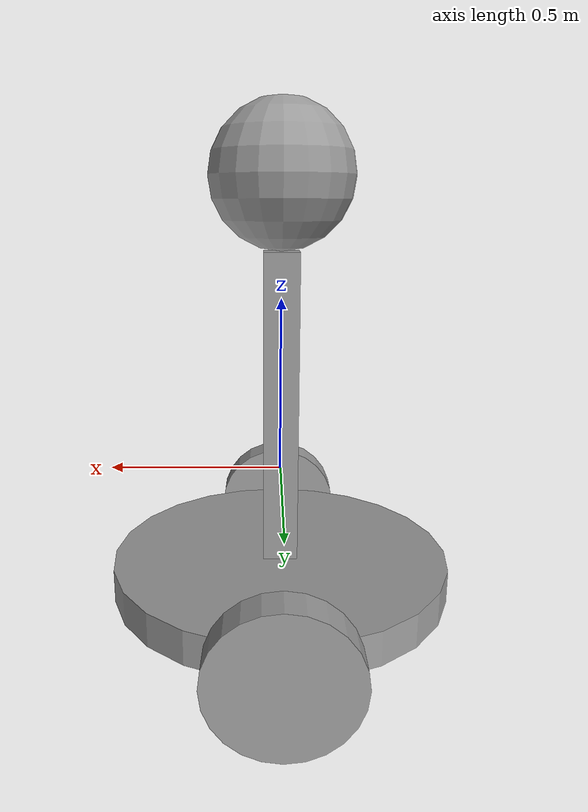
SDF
<?xml version='1.0'?>
<sdf version='1.6'>
  <model name='robot'>
    <link name='link_10'>
      <pose frame=''>0 0 0.83 0 -0 0</pose>
      <inertial>
        <mass>1</mass>
        <inertia>
          <ixx>0.1</ixx>
          <ixy>0</ixy>
          <ixz>0</ixz>
          <iyy>0.1</iyy>
          <iyz>0</iyz>
          <izz>0.1</izz>
        </inertia>
        <pose frame=''>0 0 0 0 -0 0</pose>
      </inertial>
      <gravity>1</gravity>
      <self_collide>0</self_collide>
      <kinematic>0</kinematic>
      <visual name='visual'>
        <pose frame=''>0 0 0 0 -0 0</pose>
        <geometry>
          <sphere>
            <radius>0.2</radius>
          </sphere>
        </geometry>
        <material>
          <lighting>1</lighting>
          <script>
            <uri>file://media/materials/scripts/gazebo.material</uri>
            <name>Gazebo/Grey</name>
          </script>
          <ambient>0.3 0.3 0.3 1</ambient>
          <diffuse>0.7 0.7 0.7 1</diffuse>
          <specular>0.01 0.01 0.01 1</specular>
          <emissive>0 0 0 1</emissive>
          <shader type='vertex'>
            <normal_map>__default__</normal_map>
          </shader>
        </material>
        <cast_shadows>1</cast_shadows>
        <transparency>0</transparency>
      </visual>
      <collision name='collision'>
        <laser_retro>0</laser_retro>
        <max_contacts>10</max_contacts>
        <pose frame=''>0 0 0 0 -0 0</pose>
        <geometry>
          <sphere>
            <radius>0.2</radius>
          </sphere>
        </geometry>
        <surface>
          <friction>
            <ode>
              <mu>1</mu>
              <mu2>1</mu2>
              <fdir1>0 0 0</fdir1>
              <slip1>0</slip1>
              <slip2>0</slip2>
            </ode>
            <torsional>
              <coefficient>1</coefficient>
              <patch_radius>0</patch_radius>
              <surface_radius>0</surface_radius>
              <use_patch_radius>1</use_patch_radius>
              <ode>
                <slip>0</slip>
              </ode>
            </torsional>
          </friction>
          <bounce>
            <restitution_coefficient>0</restitution_coefficient>
            <threshold>1e+06</threshold>
          </bounce>
          <contact>
            <collide_without_contact>0</collide_without_contact>
            <collide_without_contact_bitmask>1</collide_without_contact_bitmask>
            <collide_bitmask>1</collide_bitmask>
            <ode>
              <soft_cfm>0</soft_cfm>
              <soft_erp>0.2</soft_erp>
              <kp>1e+13</kp>
              <kd>1</kd>
              <max_vel>0.01</max_vel>
              <min_depth>0</min_depth>
            </ode>
            <bullet>
              <split_impulse>1</split_impulse>
              <split_impulse_penetration_threshold>-0.01</split_impulse_penetration_threshold>
              <soft_cfm>0</soft_cfm>
              <soft_erp>0.2</soft_erp>
              <kp>1e+13</kp>
              <kd>1</kd>
            </bullet>
          </contact>
        </surface>
      </collision>
    </link>
    <link name='link_6'>
      <pose frame=''>0 0 -0.32 0 -0 0</pose>
      <inertial>
        <mass>1</mass>
        <inertia>
          <ixx>0.145833</ixx>
          <ixy>0</ixy>
          <ixz>0</ixz>
          <iyy>0.145833</iyy>
          <iyz>0</iyz>
          <izz>0.125</izz>
        </inertia>
        <pose frame=''>0 0 0 0 -0 0</pose>
      </inertial>
      <gravity>1</gravity>
      <self_collide>0</self_collide>
      <kinematic>0</kinematic>
      <visual name='visual'>
        <pose frame=''>0 0 0 0 -0 0</pose>
        <geometry>
          <cylinder>
            <radius>0.5</radius>
            <length>0.1</length>
          </cylinder>
        </geometry>
        <material>
          <lighting>1</lighting>
          <script>
            <uri>file://media/materials/scripts/gazebo.material</uri>
            <name>Gazebo/Grey</name>
          </script>
          <ambient>0.3 0.3 0.3 1</ambient>
          <diffuse>0.7 0.7 0.7 1</diffuse>
          <specular>0.01 0.01 0.01 1</specular>
          <emissive>0 0 0 1</emissive>
          <shader type='vertex'>
            <normal_map>__default__</normal_map>
          </shader>
        </material>
        <cast_shadows>1</cast_shadows>
        <transparency>0</transparency>
      </visual>
      <collision name='collision'>
        <laser_retro>0</laser_retro>
        <max_contacts>10</max_contacts>
        <pose frame=''>0 0 0 0 -0 0</pose>
        <geometry>
          <cylinder>
            <radius>0.5</radius>
            <length>0.1</length>
          </cylinder>
        </geometry>
        <surface>
          <friction>
            <ode>
              <mu>1</mu>
              <mu2>1</mu2>
              <fdir1>0 0 0</fdir1>
              <slip1>0</slip1>
              <slip2>0</slip2>
            </ode>
            <torsional>
              <coefficient>1</coefficient>
              <patch_radius>0</patch_radius>
              <surface_radius>0</surface_radius>
              <use_patch_radius>1</use_patch_radius>
              <ode>
                <slip>0</slip>
              </ode>
            </torsional>
          </friction>
          <bounce>
            <restitution_coefficient>0</restitution_coefficient>
            <threshold>1e+06</threshold>
          </bounce>
          <contact>
            <collide_without_contact>0</collide_without_contact>
            <collide_without_contact_bitmask>1</collide_without_contact_bitmask>
            <collide_bitmask>1</collide_bitmask>
            <ode>
              <soft_cfm>0</soft_cfm>
              <soft_erp>0.2</soft_erp>
              <kp>1e+13</kp>
              <kd>1</kd>
              <max_vel>0.01</max_vel>
              <min_depth>0</min_depth>
            </ode>
            <bullet>
              <split_impulse>1</split_impulse>
              <split_impulse_penetration_threshold>-0.01</split_impulse_penetration_threshold>
              <soft_cfm>0</soft_cfm>
              <soft_erp>0.2</soft_erp>
              <kp>1e+13</kp>
              <kd>1</kd>
            </bullet>
          </contact>
        </surface>
      </collision>
    </link>
    <link name='link_7'>
      <pose frame=''>0 0 0.13 0 -0 0</pose>
      <inertial>
        <mass>1</mass>
        <inertia>
          <ixx>0.166667</ixx>
          <ixy>0</ixy>
          <ixz>0</ixz>
          <iyy>0.166667</iyy>
          <iyz>0</iyz>
          <izz>0.166667</izz>
        </inertia>
        <pose frame=''>0 0 0 0 -0 0</pose>
      </inertial>
      <gravity>1</gravity>
      <self_collide>0</self_collide>
      <kinematic>0</kinematic>
      <visual name='visual'>
        <pose frame=''>0 0 0 0 -0 0</pose>
        <geometry>
          <box>
            <size>0.1 0.1 1</size>
          </box>
        </geometry>
        <material>
          <lighting>1</lighting>
          <script>
            <uri>file://media/materials/scripts/gazebo.material</uri>
            <name>Gazebo/Grey</name>
          </script>
          <ambient>0.3 0.3 0.3 1</ambient>
          <diffuse>0.7 0.7 0.7 1</diffuse>
          <specular>0.01 0.01 0.01 1</specular>
          <emissive>0 0 0 1</emissive>
          <shader type='vertex'>
            <normal_map>__default__</normal_map>
          </shader>
        </material>
        <cast_shadows>1</cast_shadows>
        <transparency>0</transparency>
      </visual>
      <collision name='collision'>
        <laser_retro>0</laser_retro>
        <max_contacts>10</max_contacts>
        <pose frame=''>0 0 0 0 -0 0</pose>
        <geometry>
          <box>
            <size>0.1 0.1 1</size>
          </box>
        </geometry>
        <surface>
          <friction>
            <ode>
              <mu>1</mu>
              <mu2>1</mu2>
              <fdir1>0 0 0</fdir1>
              <slip1>0</slip1>
              <slip2>0</slip2>
            </ode>
            <torsional>
              <coefficient>1</coefficient>
              <patch_radius>0</patch_radius>
              <surface_radius>0</surface_radius>
              <use_patch_radius>1</use_patch_radius>
              <ode>
                <slip>0</slip>
              </ode>
            </torsional>
          </friction>
          <bounce>
            <restitution_coefficient>0</restitution_coefficient>
            <threshold>1e+06</threshold>
          </bounce>
          <contact>
            <collide_without_contact>0</collide_without_contact>
            <collide_without_contact_bitmask>1</collide_without_contact_bitmask>
            <collide_bitmask>1</collide_bitmask>
            <ode>
              <soft_cfm>0</soft_cfm>
              <soft_erp>0.2</soft_erp>
              <kp>1e+13</kp>
              <kd>1</kd>
              <max_vel>0.01</max_vel>
              <min_depth>0</min_depth>
            </ode>
            <bullet>
              <split_impulse>1</split_impulse>
              <split_impulse_penetration_threshold>-0.01</split_impulse_penetration_threshold>
              <soft_cfm>0</soft_cfm>
              <soft_erp>0.2</soft_erp>
              <kp>1e+13</kp>
              <kd>1</kd>
            </bullet>
          </contact>
        </surface>
      </collision>
    </link>
    <link name='link_8'>
      <pose frame=''>0 -0.550241 -0.32 1.572 -0 0</pose>
      <inertial>
        <mass>1</mass>
        <inertia>
          <ixx>0.145833</ixx>
          <ixy>0</ixy>
          <ixz>0</ixz>
          <iyy>0.145833</iyy>
          <iyz>0</iyz>
          <izz>0.125</izz>
        </inertia>
        <pose frame=''>0 0 0 0 -0 0</pose>
      </inertial>
      <gravity>1</gravity>
      <self_collide>0</self_collide>
      <kinematic>0</kinematic>
      <visual name='visual'>
        <pose frame=''>0 0 0 0 -0 0</pose>
        <geometry>
          <cylinder>
            <radius>0.2</radius>
            <length>0.1</length>
          </cylinder>
        </geometry>
        <material>
          <lighting>1</lighting>
          <script>
            <uri>file://media/materials/scripts/gazebo.material</uri>
            <name>Gazebo/Grey</name>
          </script>
          <ambient>0.3 0.3 0.3 1</ambient>
          <diffuse>0.7 0.7 0.7 1</diffuse>
          <specular>0.01 0.01 0.01 1</specular>
          <emissive>0 0 0 1</emissive>
          <shader type='vertex'>
            <normal_map>__default__</normal_map>
          </shader>
        </material>
        <cast_shadows>1</cast_shadows>
        <transparency>0</transparency>
      </visual>
      <collision name='collision'>
        <laser_retro>0</laser_retro>
        <max_contacts>10</max_contacts>
        <pose frame=''>0 0 0 0 -0 0</pose>
        <geometry>
          <cylinder>
            <radius>0.2</radius>
            <length>0.1</length>
          </cylinder>
        </geometry>
        <surface>
          <friction>
            <ode>
              <mu>1</mu>
              <mu2>1</mu2>
              <fdir1>0 0 0</fdir1>
              <slip1>0</slip1>
              <slip2>0</slip2>
            </ode>
            <torsional>
              <coefficient>1</coefficient>
              <patch_radius>0</patch_radius>
              <surface_radius>0</surface_radius>
              <use_patch_radius>1</use_patch_radius>
              <ode>
                <slip>0</slip>
              </ode>
            </torsional>
          </friction>
          <bounce>
            <restitution_coefficient>0</restitution_coefficient>
            <threshold>1e+06</threshold>
          </bounce>
          <contact>
            <collide_without_contact>0</collide_without_contact>
            <collide_without_contact_bitmask>1</collide_without_contact_bitmask>
            <collide_bitmask>1</collide_bitmask>
            <ode>
              <soft_cfm>0</soft_cfm>
              <soft_erp>0.2</soft_erp>
              <kp>1e+13</kp>
              <kd>1</kd>
              <max_vel>0.01</max_vel>
              <min_depth>0</min_depth>
            </ode>
            <bullet>
              <split_impulse>1</split_impulse>
              <split_impulse_penetration_threshold>-0.01</split_impulse_penetration_threshold>
              <soft_cfm>0</soft_cfm>
              <soft_erp>0.2</soft_erp>
              <kp>1e+13</kp>
              <kd>1</kd>
            </bullet>
          </contact>
        </surface>
      </collision>
    </link>
    <link name='link_8_clone'>
      <pose frame=''>0 0.550241 -0.32 1.572 -0 0</pose>
      <inertial>
        <mass>1</mass>
        <inertia>
          <ixx>0.145833</ixx>
          <ixy>0</ixy>
          <ixz>0</ixz>
          <iyy>0.145833</iyy>
          <iyz>0</iyz>
          <izz>0.125</izz>
        </inertia>
        <pose frame=''>0 0 0 0 -0 0</pose>
      </inertial>
      <self_collide>0</self_collide>
      <kinematic>0</kinematic>
      <visual name='visual'>
        <pose frame=''>0 0 0 0 -0 0</pose>
        <geometry>
          <cylinder>
            <radius>0.2</radius>
            <length>0.1</length>
          </cylinder>
        </geometry>
        <material>
          <lighting>1</lighting>
          <script>
            <uri>file://media/materials/scripts/gazebo.material</uri>
            <name>Gazebo/Grey</name>
          </script>
          <ambient>0.3 0.3 0.3 1</ambient>
          <diffuse>0.7 0.7 0.7 1</diffuse>
          <specular>0.01 0.01 0.01 1</specular>
          <emissive>0 0 0 1</emissive>
          <shader type='vertex'>
            <normal_map>__default__</normal_map>
          </shader>
        </material>
        <cast_shadows>1</cast_shadows>
        <transparency>0</transparency>
      </visual>
      <collision name='collision'>
        <laser_retro>0</laser_retro>
        <max_contacts>10</max_contacts>
        <pose frame=''>0 0 0 0 -0 0</pose>
        <geometry>
          <cylinder>
            <radius>0.2</radius>
            <length>0.1</length>
          </cylinder>
        </geometry>
        <surface>
          <friction>
            <ode>
              <mu>1</mu>
              <mu2>1</mu2>
              <fdir1>0 0 0</fdir1>
              <slip1>0</slip1>
              <slip2>0</slip2>
            </ode>
            <torsional>
              <coefficient>1</coefficient>
              <patch_radius>0</patch_radius>
              <surface_radius>0</surface_radius>
              <use_patch_radius>1</use_patch_radius>
              <ode>
                <slip>0</slip>
              </ode>
            </torsional>
          </friction>
          <bounce>
            <restitution_coefficient>0</restitution_coefficient>
            <threshold>1e+06</threshold>
          </bounce>
          <contact>
            <collide_without_contact>0</collide_without_contact>
            <collide_without_contact_bitmask>1</collide_without_contact_bitmask>
            <collide_bitmask>1</collide_bitmask>
            <ode>
              <soft_cfm>0</soft_cfm>
              <soft_erp>0.2</soft_erp>
              <kp>1e+13</kp>
              <kd>1</kd>
              <max_vel>0.01</max_vel>
              <min_depth>0</min_depth>
            </ode>
            <bullet>
              <split_impulse>1</split_impulse>
              <split_impulse_penetration_threshold>-0.01</split_impulse_penetration_threshold>
              <soft_cfm>0</soft_cfm>
              <soft_erp>0.2</soft_erp>
              <kp>1e+13</kp>
              <kd>1</kd>
            </bullet>
          </contact>
        </surface>
      </collision>
    </link>
    <joint name='link_6_JOINT_10' type='revolute'>
      <parent>link_6</parent>
      <child>link_7</child>
      <pose frame=''>0 0 0 0 -0 0</pose>
      <axis>
        <xyz>1 0 0</xyz>
        <use_parent_model_frame>0</use_parent_model_frame>
        <limit>
          <lower>-1.79769e+308</lower>
          <upper>1.79769e+308</upper>
          <effort>-1</effort>
          <velocity>-1</velocity>
        </limit>
        <dynamics>
          <spring_reference>0</spring_reference>
          <spring_stiffness>0</spring_stiffness>
          <damping>0</damping>
        </dynamics>
      </axis>
      <physics>
        <ode>
          <limit>
            <cfm>0</cfm>
            <erp>0.2</erp>
          </limit>
          <suspension>
            <cfm>0</cfm>
            <erp>0.2</erp>
          </suspension>
        </ode>
      </physics>
    </joint>
    <joint name='link_6_JOINT_6' type='fixed'>
      <parent>link_6</parent>
      <child>link_7</child>
      <pose frame=''>0 0 0 0 -0 0</pose>
      <physics>
        <ode>
          <limit>
            <cfm>0</cfm>
            <erp>0.2</erp>
          </limit>
          <suspension>
            <cfm>0</cfm>
            <erp>0.2</erp>
          </suspension>
        </ode>
      </physics>
    </joint>
    <joint name='link_6_JOINT_7' type='revolute'>
      <parent>link_6</parent>
      <child>link_8</child>
      <pose frame=''>0 0 0 0 -0 0</pose>
      <axis>
        <xyz>0 0 1</xyz>
        <use_parent_model_frame>0</use_parent_model_frame>
        <limit>
          <lower>-1.79769e+308</lower>
          <upper>1.79769e+308</upper>
          <effort>-1</effort>
          <velocity>-1</velocity>
        </limit>
        <dynamics>
          <spring_reference>0</spring_reference>
          <spring_stiffness>0</spring_stiffness>
          <damping>0</damping>
        </dynamics>
      </axis>
      <physics>
        <ode>
          <limit>
            <cfm>0</cfm>
            <erp>0.2</erp>
          </limit>
          <suspension>
            <cfm>0</cfm>
            <erp>0.2</erp>
          </suspension>
        </ode>
      </physics>
    </joint>
    <joint name='link_6_JOINT_8' type='revolute'>
      <parent>link_6</parent>
      <child>link_8_clone</child>
      <pose frame=''>0 0 0 0 -0 0</pose>
      <axis>
        <xyz>0 0 1</xyz>
        <use_parent_model_frame>0</use_parent_model_frame>
        <limit>
          <lower>-1.79769e+308</lower>
          <upper>1.79769e+308</upper>
          <effort>-1</effort>
          <velocity>-1</velocity>
        </limit>
        <dynamics>
          <spring_reference>0</spring_reference>
          <spring_stiffness>0</spring_stiffness>
          <damping>0</damping>
        </dynamics>
      </axis>
      <physics>
        <ode>
          <limit>
            <cfm>0</cfm>
            <erp>0.2</erp>
          </limit>
          <suspension>
            <cfm>0</cfm>
            <erp>0.2</erp>
          </suspension>
        </ode>
      </physics>
    </joint>
    <joint name='link_7_JOINT_11' type='revolute'>
      <parent>link_7</parent>
      <child>link_10</child>
      <pose frame=''>0 0 0 0 -0 0</pose>
      <axis>
        <xyz>0 0 1</xyz>
        <use_parent_model_frame>0</use_parent_model_frame>
        <limit>
          <lower>-1.79769e+308</lower>
          <upper>1.79769e+308</upper>
          <effort>-1</effort>
          <velocity>-1</velocity>
        </limit>
        <dynamics>
          <spring_reference>0</spring_reference>
          <spring_stiffness>0</spring_stiffness>
          <damping>0</damping>
        </dynamics>
      </axis>
      <physics>
        <ode>
          <limit>
            <cfm>0</cfm>
            <erp>0.2</erp>
          </limit>
          <suspension>
            <cfm>0</cfm>
            <erp>0.2</erp>
          </suspension>
        </ode>
      </physics>
    </joint>
    <static>0</static>
    <allow_auto_disable>1</allow_auto_disable>
  </model>
</sdf>
